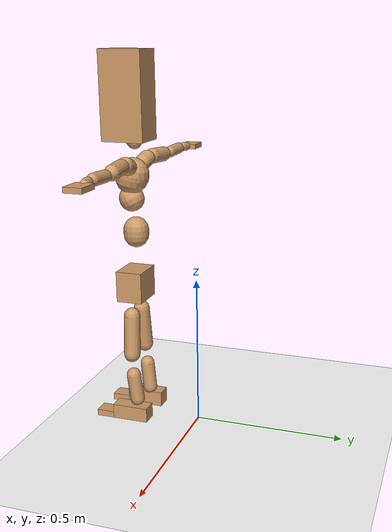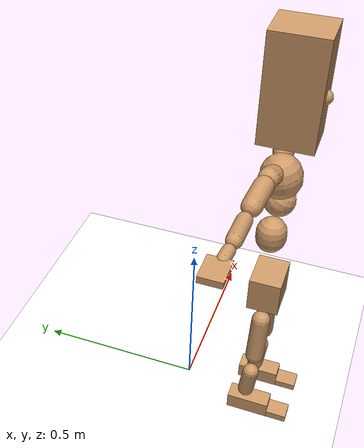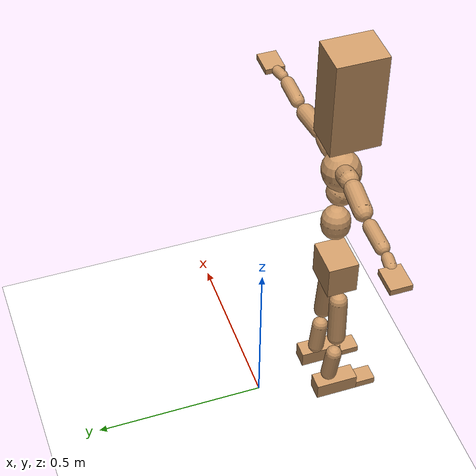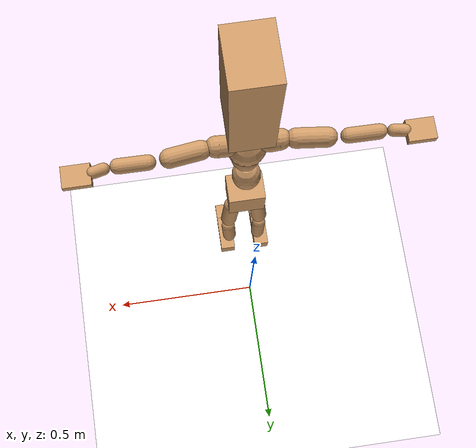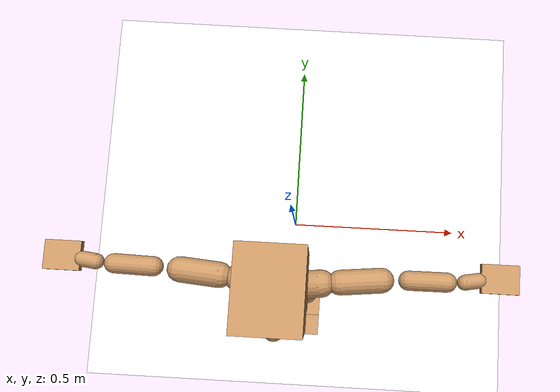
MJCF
<mujoco model="humanoid">
  <option integrator="implicitfast" />

  <visual>
    <global offwidth="1280" offheight="960" />
    <headlight active="1" ambient="0.34 0.34 0.34" diffuse="0.5 0.5 0.5" />
  </visual>

  <default>
    <joint damping="2" stiffness="2" armature="0.01" limited="true" solimplimit="0 .99 .01" />
    <geom condim="1" friction="0.7 0.005 0.0001" solimp=".99 .99 .003" solref="0.015 1" margin="0.001" rgba="0.8 0.6 .4 1" />
    <default class="smplcontact">
      <geom condim="3" friction="1. 0.005 0.0001" solref="0.015 1" solimp="0.98 0.98 0.001" priority="1" />
    </default>
    <default class="stiff_medium">
      <joint stiffness="10" />
    </default>
    <default class="stiff_medium_higher">
      <joint stiffness="50" />
    </default>
    <default class="stiff_high">
      <joint stiffness="100" />
    </default>
  </default>

  <asset>
    <texture type="skybox" builtin="gradient" rgb1="0.99 0.99 0.99" rgb2="0.608 0.828 0.892" width="100" />
    <texture builtin="flat" height="1278" mark="cross" markrgb="1 1 1" name="texgeom" random="0.01" rgb1="0.8 0.6 0.4" rgb2="0.8 0.6 0.4" type="cube" width="127" />
    <texture name="texplane" type="2d" builtin="checker" markrgb="1 1 1" rgb1="0.756 0.772 0.76" rgb2="0.6 0.6 0.6" width="100" height="100" />
    <material name="MatPlane" reflectance="0.5" texture="texplane" texrepeat="1 1" texuniform="true" />
    <material name="geom" texture="texgeom" texuniform="true" />
  </asset>

  <worldbody>
    <light name="tracking_light" pos="0 0 7" dir="0 0 -1" directional="true" cutoff="100" exponent="1" diffuse="1 1 1" specular="0.1 0.1 0.1" mode="trackcom" />
    <camera name="back" pos="0 3 2.4" xyaxes="-1 0 0 0 -1 2" mode="trackcom" />
    <camera name="side" pos="-3 0 2.4" xyaxes="0 -1 0 1 0 2" mode="trackcom" />
    <camera name="front_side" pos="-2.8 -2.8 0.8" xyaxes="0.5 -0.5 0 0.1 0.1 1" mode="trackcom" />
    <geom condim="3" name="floor" pos="0 0 0" rgba="1 1 1 1" size="100 100 .2" type="plane" material="MatPlane" />
    <body name="Pelvis" pos="-0.0018 -0.2233 0.478945" euler="90 0 0">
      <site name="Pelvis" size="0.01" />
      <freejoint name="Pelvis" />
      <geom type="box" pos="0 -0.00874206 -0.0029414" size="0.0571701 0.0521634 0.0443884" quat="1.0000 0.0000 0.0000 0.0000" density="3165.830099" name="Pelvis" />
      <body name="L_Hip" pos="0.0371686 -0.0660351 -0.00363664">
        <joint name="L_Hip_x" type="hinge" pos="0 0 0" axis="1 0 0" stiffness="10" range="-160.0 22.92" class="stiff_medium" damping="15" />
        <joint name="L_Hip_y" type="hinge" pos="0 0 0" axis="0 1 0" stiffness="10" range="-70.0 70.0" class="stiff_medium" damping="10" />
        <joint name="L_Hip_z" type="hinge" pos="0 0 0" axis="0 0 1" stiffness="10" range="-28.65 90.0" class="stiff_medium" damping="10" />
        <geom type="capsule" density="2040.816327" fromto="0.00412339 -0.0449425 -0.000539186 0.0164074 -0.179887 -0.00215708" size="0.0272814" name="L_Hip" />
        <body name="L_Knee" pos="0.0205308 -0.224829 -0.00269627">
          <joint name="L_Knee_x" type="hinge" pos="0 0 0" axis="1 0 0" range="-5.16 171.89" damping="8" />
          <joint name="L_Knee_y" type="hinge" pos="0 0 0" axis="0 1 0" range="-4.58 6.88" damping="8" />
          <joint name="L_Knee_z" type="hinge" pos="0 0 0" axis="0 0 1" range="-6.88 4.58" damping="8" />
          <geom type="capsule" density="1234.567901" fromto="-0.00101042 -0.0298561 -0.0032586 -0.004086 -0.119423 -0.0131229" size="0.0239988" name="L_Knee" />
          <body name="L_Ankle" pos="-0.00509642 -0.149279 -0.0163815">
            <joint name="L_Ankle_x" type="hinge" pos="0 0 0" axis="1 0 0" range="-45.84 45.84" class="stiff_medium" damping="6" />
            <joint name="L_Ankle_y" type="hinge" pos="0 0 0" axis="0 1 0" range="-74.48 22.92" class="stiff_medium" damping="3" />
            <joint name="L_Ankle_z" type="hinge" pos="0 0 0" axis="0 0 1" range="-4.58 4.58" class="stiff_medium" damping="6" />
            <geom type="box" pos="0.0124608 -0.0127817 0.0175733" size="0.0258308 0.0248147 0.0617243" quat="1.0000 0.0000 0.0000 0.0000" density="449.071558" name="L_Ankle" class="smplcontact" />
            <body name="L_Toe" pos="0.0141187 -0.0298418 0.0866318">
              <joint name="L_Toe_x" type="hinge" pos="0 0 0" axis="1 0 0" range="-91.67 22.92" />
              <joint name="L_Toe_y" type="hinge" pos="0 0 0" axis="0 1 0" range="-4.58 4.58" />
              <joint name="L_Toe_z" type="hinge" pos="0 0 0" axis="0 0 1" range="-4.58 4.58" />
              <geom type="box" pos="-0.0016044 0.0029414 0.018009" size="0.0255634 0.010696 0.0360179" quat="1.0000 0.0000 0.0000 0.0000" density="423.206892" name="L_Toe" class="smplcontact" />
            </body>
          </body>
        </body>
      </body>
      <body name="R_Hip" pos="-0.036206 -0.0653848 -0.00229964">
        <joint name="R_Hip_x" type="hinge" pos="0 0 0" axis="1 0 0" stiffness="10" range="-160.0 22.92" class="stiff_medium" damping="15" />
        <joint name="R_Hip_y" type="hinge" pos="0 0 0" axis="0 1 0" stiffness="10" range="-70.0 70.0" class="stiff_medium" damping="10" />
        <joint name="R_Hip_z" type="hinge" pos="0 0 0" axis="0 0 1" stiffness="10" range="-90.0 28.65" class="stiff_medium" damping="10" />
        <geom type="capsule" density="2040.816327" fromto="-0.00460322 -0.0458415 -0.00107332 -0.0183254 -0.183422 -0.00424918" size="0.0268822" name="R_Hip" />
        <body name="R_Knee" pos="-0.0229286 -0.229264 -0.0053225">
          <joint name="R_Knee_x" type="hinge" pos="0 0 0" axis="1 0 0" range="-5.16 171.89" damping="8" />
          <joint name="R_Knee_y" type="hinge" pos="0 0 0" axis="0 1 0" range="-6.88 4.58" damping="8" />
          <joint name="R_Knee_z" type="hinge" pos="0 0 0" axis="0 0 1" range="-4.58 6.88" damping="8" />
          <geom type="capsule" density="1234.567901" fromto="0.00120468 -0.0298924 -0.00319235 0.00473033 -0.119534 -0.0126816" size="0.0239988" name="R_Knee" />
          <body name="R_Ankle" pos="0.00593501 -0.149427 -0.015874">
            <joint name="R_Ankle_x" type="hinge" pos="0 0 0" axis="1 0 0" range="-45.84 45.84" class="stiff_medium" damping="6" />
            <joint name="R_Ankle_y" type="hinge" pos="0 0 0" axis="0 1 0" range="-22.92 74.48" class="stiff_medium" damping="3" />
            <joint name="R_Ankle_z" type="hinge" pos="0 0 0" axis="0 0 1" range="-4.58 4.58" class="stiff_medium" damping="6" />
            <geom type="box" pos="-0.0113378 -0.00930552 0.0185899" size="0.0258308 0.0255634 0.0628135" quat="1.0000 0.0000 0.0000 0.0000" density="434.700981" name="R_Ankle" class="smplcontact" />
            <body name="R_Toe" pos="-0.0135839 -0.0257239 0.0895365">
              <joint name="R_Toe_x" type="hinge" pos="0 0 0" axis="1 0 0" range="-91.67 22.92" />
              <joint name="R_Toe_y" type="hinge" pos="0 0 0" axis="0 1 0" range="-4.58 4.58" />
              <joint name="R_Toe_z" type="hinge" pos="0 0 0" axis="0 0 1" range="-4.58 4.58" />
              <geom type="box" pos="0.00224616 0.0024066 0.016484" size="0.0256169 0.0115517 0.0358001" quat="1.0000 0.0000 0.0000 0.0000" density="407.384095" name="R_Toe" class="smplcontact" />
            </body>
          </body>
        </body>
      </body>
      <body name="Torso" pos="-0.001337 0.0787508 -0.0142792">
        <joint name="Torso_x" type="hinge" pos="0 0 0" axis="1 0 0" range="-25.78 57.3" class="stiff_medium" damping="15" />
        <joint name="Torso_y" type="hinge" pos="0 0 0" axis="0 1 0" range="-57.3 57.3" class="stiff_high" damping="20" />
        <joint name="Torso_z" type="hinge" pos="0 0 0" axis="0 0 1" range="-34.38 34.38" class="stiff_high" damping="20" />
        <geom type="capsule" density="2040.816327" fromto="0.00324656 0.0840236 0.000649311 0.00393748 0.102678 0.000787495" size="0.0417029" name="Torso" />
        <body name="Spine" pos="0.00718714 0.18684 0.00143743">
          <joint name="Spine_x" type="hinge" pos="0 0 0" axis="1 0 0" stiffness="10" range="-25.78 57.3" class="stiff_medium" damping="15" />
          <joint name="Spine_y" type="hinge" pos="0 0 0" axis="0 1 0" stiffness="10" range="-57.3 57.3" class="stiff_high" damping="8" />
          <joint name="Spine_z" type="hinge" pos="0 0 0" axis="0 0 1" stiffness="20" range="-34.38 34.38" class="stiff_high" damping="12" />
          <geom type="capsule" density="2040.816327" fromto="0.000464636 0.0174131 0.00839288 0.000537884 0.0212953 0.0102973" size="0.0409436" name="Spine" />
          <body name="Chest" pos="0.00100252 0.0387083 0.0186902">
            <joint name="Chest_x" type="hinge" pos="0 0 0" axis="1 0 0" stiffness="10" range="-25.78 57.3" class="stiff_medium" damping="15" />
            <joint name="Chest_y" type="hinge" pos="0 0 0" axis="0 1 0" stiffness="10" range="-57.3 57.3" class="stiff_high" damping="8" />
            <joint name="Chest_z" type="hinge" pos="0 0 0" axis="0 0 1" stiffness="20" range="-34.38 34.38" class="stiff_high" damping="12" />
            <geom type="capsule" density="2040.816327" fromto="-0.000573874 0.0499413 -0.0127282 -0.000647123 0.0610018 -0.0155848" size="0.0543385" name="Chest" />
            <body name="Neck" pos="-0.00178409 0.156111 -0.033625">
              <joint name="Neck_x" type="hinge" pos="0 0 0" axis="1 0 0" range="-28.65 57.3" class="stiff_medium_higher" damping="10" />
              <joint name="Neck_y" type="hinge" pos="0 0 0" axis="0 1 0" range="-40.11 40.11" class="stiff_medium_higher" damping="10" />
              <joint name="Neck_z" type="hinge" pos="0 0 0" axis="0 0 1" range="-40.11 40.11" class="stiff_medium_higher" damping="10" />
              <geom type="capsule" density="1000" fromto="0.000732675 0.00944292 0.0074754 0.00298379 0.0377635 0.0298414" size="0.023435" name="Neck" />
              <body name="Head" pos="0.00376957 0.0471982 0.0372565">
                <joint name="Head_x" type="hinge" pos="0 0 0" axis="1 0 0" range="-28.65 57.3" class="stiff_medium_higher" damping="2" />
                <joint name="Head_y" type="hinge" pos="0 0 0" axis="0 1 0" range="-40.11 40.11" class="stiff_medium_higher" damping="2" />
                <joint name="Head_z" type="hinge" pos="0 0 0" axis="0 0 1" range="-40.11 40.11" class="stiff_medium_higher" damping="2" />
                <geom type="box" pos="-0.00390894 0.107748 -0.0107961" size="0.0564004 0.141942 0.0707332" quat="1.0000 0.0000 0.0000 0.0000" density="1018.069894" name="Head" />
                <geom type="capsule" name="nose" size="0.018614 0.009307" pos="0 0.0861 0.046535" quat="1 0 0 0" mass="0" contype="0" conaffinity="0" />
              </body>
            </body>
            <body name="L_Thorax" pos="0.0425798 0.0891719 -0.0244778">
              <joint name="L_Thorax_x" type="hinge" pos="0 0 0" axis="1 0 0" range="-10.89 4.58" class="stiff_medium_higher" damping="20" />
              <joint name="L_Thorax_y" type="hinge" pos="0 0 0" axis="0 1 0" range="-28.65 17.19" class="stiff_medium_higher" damping="20" />
              <joint name="L_Thorax_z" type="hinge" pos="0 0 0" axis="0 0 1" range="-31.51 40.11" class="stiff_medium_higher" damping="20" />
              <geom type="capsule" density="1000" fromto="0.00946398 0.00317199 -0.000936248 0.037856 0.012688 -0.00369225" size="0.0274828" name="L_Thorax" />
              <body name="L_Shoulder" pos="0.04732 0.01586 -0.0046285">
                <joint name="L_Shoulder_x" type="hinge" pos="0 0 0" axis="1 0 0" range="-97.4 97.4" class="stiff_medium" damping="6" />
                <joint name="L_Shoulder_y" type="hinge" pos="0 0 0" axis="0 1 0" range="-108.86 80.21" class="stiff_medium" damping="6" />
                <joint name="L_Shoulder_z" type="hinge" pos="0 0 0" axis="0 0 1" range="-97.4 85.94" class="stiff_medium" damping="6" />
                <geom type="capsule" density="1000" fromto="0.0272477 -0.00136207 -0.00288736 0.109043 -0.00535207 -0.0115499" size="0.0249194" name="L_Shoulder" />
                <body name="L_Elbow" pos="0.13629 -0.00671414 -0.0144372">
                  <joint name="L_Elbow_x" type="hinge" pos="0 0 0" axis="1 0 0" range="-17.19 4.58" damping="5" />
                  <joint name="L_Elbow_y" type="hinge" pos="0 0 0" axis="0 1 0" range="-180.0 17.19" damping="5" />
                  <joint name="L_Elbow_z" type="hinge" pos="0 0 0" axis="0 0 1" range="-100.84 4.58" damping="5" />
                  <geom type="capsule" density="1000" fromto="0.025398 0.000917933 -0.000102925 0.101694 0.00367193 -0.000459925" size="0.019521" name="L_Elbow" />
                  <body name="L_Wrist" pos="0.127092 0.00458987 -0.000611049">
                    <joint name="L_Wrist_x" type="hinge" pos="0 0 0" axis="1 0 0" range="-180.0 22.92" />
                    <joint name="L_Wrist_y" type="hinge" pos="0 0 0" axis="0 1 0" range="-17.19 17.19" />
                    <joint name="L_Wrist_z" type="hinge" pos="0 0 0" axis="0 0 1" range="-22.92 22.92" />
                    <geom type="capsule" density="1000" fromto="0.00949174 -0.000906742 -0.00169495 0.0379677 -0.00367524 -0.00677995" size="0.0153276" name="L_Wrist" class="smplcontact" />
                    <body name="L_Hand" pos="0.0474588 -0.00463012 -0.00842659">
                      <joint name="L_Hand_x" type="hinge" pos="0 0 0" axis="1 0 0" range="-17.19 17.19" />
                      <joint name="L_Hand_y" type="hinge" pos="0 0 0" axis="0 1 0" range="-51.57 51.57" />
                      <joint name="L_Hand_z" type="hinge" pos="0 0 0" axis="0 0 1" range="-91.67 91.67" />
                      <geom type="box" pos="0.031552 0.0005348 -0.00310184" size="0.03744 0.00844984 0.0287722" quat="1.0000 0.0000 0.0000 0.0000" density="400.552564" name="L_Hand" class="smplcontact" />
                    </body>
                  </body>
                </body>
              </body>
            </body>
            <body name="R_Thorax" pos="-0.0445128 0.0874791 -0.0268871">
              <joint name="R_Thorax_x" type="hinge" pos="0 0 0" axis="1 0 0" range="-10.89 4.58" class="stiff_medium_higher" damping="20" />
              <joint name="R_Thorax_y" type="hinge" pos="0 0 0" axis="0 1 0" range="-17.19 28.65" class="stiff_medium_higher" damping="20" />
              <joint name="R_Thorax_z" type="hinge" pos="0 0 0" axis="0 0 1" range="-40.11 31.51" class="stiff_medium_higher" damping="20" />
              <geom type="capsule" density="1000" fromto="-0.00998402 0.00338001 -0.000935752 -0.039936 0.01352 -0.00379575" size="0.0269552" name="R_Thorax" />
              <body name="R_Shoulder" pos="-0.0499198 0.0169527 -0.00473148">
                <joint name="R_Shoulder_x" type="hinge" pos="0 0 0" axis="1 0 0" range="-97.4 97.4" class="stiff_medium" damping="6" />
                <joint name="R_Shoulder_y" type="hinge" pos="0 0 0" axis="0 1 0" range="-80.21 108.86" class="stiff_medium" damping="6" />
                <joint name="R_Shoulder_z" type="hinge" pos="0 0 0" axis="0 0 1" range="-85.94 97.4" class="stiff_medium" damping="6" />
                <geom type="capsule" density="1000" fromto="-0.0266177 -0.00141593 -0.00225584 -0.106575 -0.00561593 -0.00897584" size="0.0255942" name="R_Shoulder" />
                <body name="R_Elbow" pos="-0.133193 -0.00698364 -0.0112317">
                  <joint name="R_Elbow_x" type="hinge" pos="0 0 0" axis="1 0 0" range="-17.19 4.58" damping="5" />
                  <joint name="R_Elbow_y" type="hinge" pos="0 0 0" axis="0 1 0" range="-17.19 180.0" damping="5" />
                  <joint name="R_Elbow_z" type="hinge" pos="0 0 0" axis="0 0 1" range="-4.58 100.84" damping="5" />
                  <geom type="capsule" density="1000" fromto="-0.0260611 0.000814191 -0.000561041 -0.104142 0.00316019 -0.00224404" size="0.0196656" name="R_Elbow" />
                  <body name="R_Wrist" pos="-0.130203 0.00397438 -0.00285328">
                    <joint name="R_Wrist_x" type="hinge" pos="0 0 0" axis="1 0 0" range="-180.0 22.92" />
                    <joint name="R_Wrist_y" type="hinge" pos="0 0 0" axis="0 1 0" range="-17.19 17.19" />
                    <joint name="R_Wrist_z" type="hinge" pos="0 0 0" axis="0 0 1" range="-22.92 22.92" />
                    <geom type="capsule" density="1000" fromto="-0.00954869 -0.000680579 -0.00118342 -0.0382507 -0.00277108 -0.00468642" size="0.0157132" name="R_Wrist" class="smplcontact" />
                    <body name="R_Hand" pos="-0.0477984 -0.00345159 -0.00582152">
                      <joint name="R_Hand_x" type="hinge" pos="0 0 0" axis="1 0 0" range="-17.19 17.19" />
                      <joint name="R_Hand_y" type="hinge" pos="0 0 0" axis="0 1 0" range="-51.57 51.57" />
                      <joint name="R_Hand_z" type="hinge" pos="0 0 0" axis="0 0 1" range="-91.67 91.67" />
                      <geom type="box" pos="-0.029568 -0.00048132 -0.00422492" size="0.036416 0.00877072 0.0292001" quat="1.0000 0.0000 0.0000 0.0000" density="403.679611" name="R_Hand" class="smplcontact" />
                    </body>
                  </body>
                </body>
              </body>
            </body>
          </body>
        </body>
      </body>
    </body>
  </worldbody>
  <actuator>
    <general name="L_Hip_x" joint="L_Hip_x" biastype="affine" gainprm="287.33006409732246" biasprm="-215.3247604770444 -180 -2.0" ctrllimited="true" ctrlrange="-1 1" forcerange="-360 360" />
    <general name="L_Hip_y" joint="L_Hip_y" biastype="affine" gainprm="219.9114857512855" biasprm="0.0 -180 -2.0" ctrllimited="true" ctrlrange="-1 1" forcerange="-360 360" />
    <general name="L_Hip_z" joint="L_Hip_z" biastype="affine" gainprm="186.3749841742145" biasprm="96.3683546488669 -180 -2.0" ctrllimited="true" ctrlrange="-1 1" forcerange="-360 360" />
    <general name="L_Knee_x" joint="L_Knee_x" biastype="affine" gainprm="278.10948965903646" biasprm="261.8988715665131 -180 -2.0" ctrllimited="true" ctrlrange="-1 1" forcerange="-360 360" />
    <general name="L_Knee_y" joint="L_Knee_y" biastype="affine" gainprm="18.001325905069514" biasprm="3.612831551628262 -180 -2.0" ctrllimited="true" ctrlrange="-1 1" forcerange="-360 360" />
    <general name="L_Knee_z" joint="L_Knee_z" biastype="affine" gainprm="18.001325905069514" biasprm="-3.612831551628262 -180 -2.0" ctrllimited="true" ctrlrange="-1 1" forcerange="-360 360" />
    <general name="L_Ankle_x" joint="L_Ankle_x" biastype="affine" gainprm="72.00530362027807" biasprm="0.0 -90 -2.0" ctrllimited="true" ctrlrange="-1 1" forcerange="-180 180" />
    <general name="L_Ankle_y" joint="L_Ankle_y" biastype="affine" gainprm="76.49778111491148" biasprm="-40.49512930477244 -90 -2.0" ctrllimited="true" ctrlrange="-1 1" forcerange="-180 180" />
    <general name="L_Ankle_z" joint="L_Ankle_z" biastype="affine" gainprm="7.1942471767206255" biasprm="0.0 -90 -2.0" ctrllimited="true" ctrlrange="-1 1" forcerange="-180 180" />
    <general name="L_Toe_x" joint="L_Toe_x" biastype="affine" gainprm="71.99902043497087" biasprm="-43.19689898685965 -72 -0.8" ctrllimited="true" ctrlrange="-1 1" forcerange="-144 144" />
    <general name="L_Toe_y" joint="L_Toe_y" biastype="affine" gainprm="5.755397741376501" biasprm="0.0 -72 -0.8" ctrllimited="true" ctrlrange="-1 1" forcerange="-144 144" />
    <general name="L_Toe_z" joint="L_Toe_z" biastype="affine" gainprm="5.755397741376501" biasprm="0.0 -72 -0.8" ctrllimited="true" ctrlrange="-1 1" forcerange="-144 144" />
    <general name="R_Hip_x" joint="R_Hip_x" biastype="affine" gainprm="287.33006409732246" biasprm="-215.3247604770444 -180 -2.0" ctrllimited="true" ctrlrange="-1 1" forcerange="-360 360" />
    <general name="R_Hip_y" joint="R_Hip_y" biastype="affine" gainprm="219.9114857512855" biasprm="0.0 -180 -2.0" ctrllimited="true" ctrlrange="-1 1" forcerange="-360 360" />
    <general name="R_Hip_z" joint="R_Hip_z" biastype="affine" gainprm="186.3749841742145" biasprm="-96.3683546488669 -180 -2.0" ctrllimited="true" ctrlrange="-1 1" forcerange="-360 360" />
    <general name="R_Knee_x" joint="R_Knee_x" biastype="affine" gainprm="278.10948965903646" biasprm="261.8988715665131 -180 -2.0" ctrllimited="true" ctrlrange="-1 1" forcerange="-360 360" />
    <general name="R_Knee_y" joint="R_Knee_y" biastype="affine" gainprm="18.001325905069514" biasprm="-3.612831551628262 -180 -2.0" ctrllimited="true" ctrlrange="-1 1" forcerange="-360 360" />
    <general name="R_Knee_z" joint="R_Knee_z" biastype="affine" gainprm="18.001325905069514" biasprm="3.612831551628262 -180 -2.0" ctrllimited="true" ctrlrange="-1 1" forcerange="-360 360" />
    <general name="R_Ankle_x" joint="R_Ankle_x" biastype="affine" gainprm="72.00530362027807" biasprm="0.0 -90 -2.0" ctrllimited="true" ctrlrange="-1 1" forcerange="-180 180" />
    <general name="R_Ankle_y" joint="R_Ankle_y" biastype="affine" gainprm="76.49778111491148" biasprm="40.49512930477244 -90 -2.0" ctrllimited="true" ctrlrange="-1 1" forcerange="-180 180" />
    <general name="R_Ankle_z" joint="R_Ankle_z" biastype="affine" gainprm="7.1942471767206255" biasprm="0.0 -90 -2.0" ctrllimited="true" ctrlrange="-1 1" forcerange="-180 180" />
    <general name="R_Toe_x" joint="R_Toe_x" biastype="affine" gainprm="71.99902043497087" biasprm="-43.19689898685965 -72 -0.8" ctrllimited="true" ctrlrange="-1 1" forcerange="-144 144" />
    <general name="R_Toe_y" joint="R_Toe_y" biastype="affine" gainprm="5.755397741376501" biasprm="0.0 -72 -0.8" ctrllimited="true" ctrlrange="-1 1" forcerange="-144 144" />
    <general name="R_Toe_z" joint="R_Toe_z" biastype="affine" gainprm="5.755397741376501" biasprm="0.0 -72 -0.8" ctrllimited="true" ctrlrange="-1 1" forcerange="-144 144" />
    <general name="Torso_x" joint="Torso_x" biastype="affine" gainprm="174.00234510682668" biasprm="66.0153336274335 -240 -4.0" ctrllimited="true" ctrlrange="-1 1" forcerange="-360 360" />
    <general name="Torso_y" joint="Torso_y" biastype="affine" gainprm="240.0176787342602" biasprm="0.0 -240 -4.0" ctrllimited="true" ctrlrange="-1 1" forcerange="-360 360" />
    <general name="Torso_z" joint="Torso_z" biastype="affine" gainprm="144.01060724055614" biasprm="0.0 -240 -4.0" ctrllimited="true" ctrlrange="-1 1" forcerange="-360 360" />
    <general name="Spine_x" joint="Spine_x" biastype="affine" gainprm="174.00234510682668" biasprm="66.0153336274335 -240 -4.0" ctrllimited="true" ctrlrange="-1 1" forcerange="-360 360" />
    <general name="Spine_y" joint="Spine_y" biastype="affine" gainprm="240.0176787342602" biasprm="0.0 -240 -4.0" ctrllimited="true" ctrlrange="-1 1" forcerange="-360 360" />
    <general name="Spine_z" joint="Spine_z" biastype="affine" gainprm="144.01060724055614" biasprm="0.0 -240 -4.0" ctrllimited="true" ctrlrange="-1 1" forcerange="-360 360" />
    <general name="Chest_x" joint="Chest_x" biastype="affine" gainprm="174.00234510682668" biasprm="66.0153336274335 -240 -4.0" ctrllimited="true" ctrlrange="-1 1" forcerange="-360 360" />
    <general name="Chest_y" joint="Chest_y" biastype="affine" gainprm="240.0176787342602" biasprm="0.0 -240 -4.0" ctrllimited="true" ctrlrange="-1 1" forcerange="-360 360" />
    <general name="Chest_z" joint="Chest_z" biastype="affine" gainprm="144.01060724055614" biasprm="0.0 -240 -4.0" ctrllimited="true" ctrlrange="-1 1" forcerange="-360 360" />
    <general name="Neck_x" joint="Neck_x" biastype="affine" gainprm="27.00198885760427" biasprm="9.000662952534757 -36 -0.8" ctrllimited="true" ctrlrange="-1 1" forcerange="-72 72" />
    <general name="Neck_y" joint="Neck_y" biastype="affine" gainprm="25.20185626709732" biasprm="0.0 -36 -0.8" ctrllimited="true" ctrlrange="-1 1" forcerange="-72 72" />
    <general name="Neck_z" joint="Neck_z" biastype="affine" gainprm="25.20185626709732" biasprm="0.0 -36 -0.8" ctrllimited="true" ctrlrange="-1 1" forcerange="-72 72" />
    <general name="Head_x" joint="Head_x" biastype="affine" gainprm="18.001325905069514" biasprm="6.000441968356505 -24 -0.8" ctrllimited="true" ctrlrange="-1 1" forcerange="-48 48" />
    <general name="Head_y" joint="Head_y" biastype="affine" gainprm="16.801237511398213" biasprm="0.0 -24 -0.8" ctrllimited="true" ctrlrange="-1 1" forcerange="-48 48" />
    <general name="Head_z" joint="Head_z" biastype="affine" gainprm="16.801237511398213" biasprm="0.0 -24 -0.8" ctrllimited="true" ctrlrange="-1 1" forcerange="-48 48" />
    <general name="L_Thorax_x" joint="L_Thorax_x" biastype="affine" gainprm="16.200146117011364" biasprm="-6.6078165480505335 -120 -1.6" ctrllimited="true" ctrlrange="-1 1" forcerange="-240 240" />
    <general name="L_Thorax_y" joint="L_Thorax_y" biastype="affine" gainprm="48.00353574685204" biasprm="-12.00088393671301 -120 -1.6" ctrllimited="true" ctrlrange="-1 1" forcerange="-240 240" />
    <general name="L_Thorax_z" joint="L_Thorax_z" biastype="affine" gainprm="75.00028861670033" biasprm="9.00589894029074 -120 -1.6" ctrllimited="true" ctrlrange="-1 1" forcerange="-240 240" />
    <general name="L_Shoulder_x" joint="L_Shoulder_x" biastype="affine" gainprm="81.5976331892389" biasprm="0.0 -48 -1.6" ctrllimited="true" ctrlrange="-1 1" forcerange="-96 96" />
    <general name="L_Shoulder_y" joint="L_Shoulder_y" biastype="affine" gainprm="79.19745640189629" biasprm="-12.00088393671301 -48 -1.6" ctrllimited="true" ctrlrange="-1 1" forcerange="-96 96" />
    <general name="L_Shoulder_z" joint="L_Shoulder_z" biastype="affine" gainprm="76.79727961455369" biasprm="-4.800353574685214 -48 -1.6" ctrllimited="true" ctrlrange="-1 1" forcerange="-96 96" />
    <general name="L_Elbow_x" joint="L_Elbow_x" biastype="affine" gainprm="13.67849441372996" biasprm="-7.923096672353461 -72 -0.8" ctrllimited="true" ctrlrange="-1 1" forcerange="-144 144" />
    <general name="L_Elbow_y" joint="L_Elbow_y" biastype="affine" gainprm="123.89813107227425" biasprm="-102.29653998619085 -72 -0.8" ctrllimited="true" ctrlrange="-1 1" forcerange="-144 144" />
    <general name="L_Elbow_z" joint="L_Elbow_z" biastype="affine" gainprm="66.23733950828719" biasprm="-60.4819417669107 -72 -0.8" ctrllimited="true" ctrlrange="-1 1" forcerange="-144 144" />
    <general name="L_Wrist_x" joint="L_Wrist_x" biastype="affine" gainprm="21.24973270888136" biasprm="-16.449379134196157 -12 -0.8" ctrllimited="true" ctrlrange="-1 1" forcerange="-24 24" />
    <general name="L_Wrist_y" joint="L_Wrist_y" biastype="affine" gainprm="3.6002651810139037" biasprm="0.0 -12 -0.8" ctrllimited="true" ctrlrange="-1 1" forcerange="-24 24" />
    <general name="L_Wrist_z" joint="L_Wrist_z" biastype="affine" gainprm="4.800353574685205" biasprm="0.0 -12 -0.8" ctrllimited="true" ctrlrange="-1 1" forcerange="-24 24" />
    <general name="L_Hand_x" joint="L_Hand_x" biastype="affine" gainprm="3.6002651810139037" biasprm="0.0 -12 -0.8" ctrllimited="true" ctrlrange="-1 1" forcerange="-24 24" />
    <general name="L_Hand_y" joint="L_Hand_y" biastype="affine" gainprm="10.800795543041708" biasprm="0.0 -12 -0.8" ctrllimited="true" ctrlrange="-1 1" forcerange="-24 24" />
    <general name="L_Hand_z" joint="L_Hand_z" biastype="affine" gainprm="19.199319903638422" biasprm="0.0 -12 -0.8" ctrllimited="true" ctrlrange="-1 1" forcerange="-24 24" />
    <general name="R_Thorax_x" joint="R_Thorax_x" biastype="affine" gainprm="16.200146117011364" biasprm="-6.6078165480505335 -120 -1.6" ctrllimited="true" ctrlrange="-1 1" forcerange="-240 240" />
    <general name="R_Thorax_y" joint="R_Thorax_y" biastype="affine" gainprm="48.00353574685204" biasprm="12.000883936713002 -120 -1.6" ctrllimited="true" ctrlrange="-1 1" forcerange="-240 240" />
    <general name="R_Thorax_z" joint="R_Thorax_z" biastype="affine" gainprm="75.00028861670033" biasprm="-9.00589894029074 -120 -1.6" ctrllimited="true" ctrlrange="-1 1" forcerange="-240 240" />
    <general name="R_Shoulder_x" joint="R_Shoulder_x" biastype="affine" gainprm="81.5976331892389" biasprm="0.0 -48 -1.6" ctrllimited="true" ctrlrange="-1 1" forcerange="-96 96" />
    <general name="R_Shoulder_y" joint="R_Shoulder_y" biastype="affine" gainprm="79.19745640189629" biasprm="12.00088393671301 -48 -1.6" ctrllimited="true" ctrlrange="-1 1" forcerange="-96 96" />
    <general name="R_Shoulder_z" joint="R_Shoulder_z" biastype="affine" gainprm="76.79727961455369" biasprm="4.800353574685204 -48 -1.6" ctrllimited="true" ctrlrange="-1 1" forcerange="-96 96" />
    <general name="R_Elbow_x" joint="R_Elbow_x" biastype="affine" gainprm="13.67849441372996" biasprm="-7.923096672353461 -72 -0.8" ctrllimited="true" ctrlrange="-1 1" forcerange="-144 144" />
    <general name="R_Elbow_y" joint="R_Elbow_y" biastype="affine" gainprm="123.89813107227425" biasprm="102.29653998619085 -72 -0.8" ctrllimited="true" ctrlrange="-1 1" forcerange="-144 144" />
    <general name="R_Elbow_z" joint="R_Elbow_z" biastype="affine" gainprm="66.23733950828719" biasprm="60.481941766910694 -72 -0.8" ctrllimited="true" ctrlrange="-1 1" forcerange="-144 144" />
    <general name="R_Wrist_x" joint="R_Wrist_x" biastype="affine" gainprm="21.24973270888136" biasprm="-16.449379134196157 -12 -0.8" ctrllimited="true" ctrlrange="-1 1" forcerange="-24 24" />
    <general name="R_Wrist_y" joint="R_Wrist_y" biastype="affine" gainprm="3.6002651810139037" biasprm="0.0 -12 -0.8" ctrllimited="true" ctrlrange="-1 1" forcerange="-24 24" />
    <general name="R_Wrist_z" joint="R_Wrist_z" biastype="affine" gainprm="4.800353574685205" biasprm="0.0 -12 -0.8" ctrllimited="true" ctrlrange="-1 1" forcerange="-24 24" />
    <general name="R_Hand_x" joint="R_Hand_x" biastype="affine" gainprm="3.6002651810139037" biasprm="0.0 -12 -0.8" ctrllimited="true" ctrlrange="-1 1" forcerange="-24 24" />
    <general name="R_Hand_y" joint="R_Hand_y" biastype="affine" gainprm="10.800795543041708" biasprm="0.0 -12 -0.8" ctrllimited="true" ctrlrange="-1 1" forcerange="-24 24" />
    <general name="R_Hand_z" joint="R_Hand_z" biastype="affine" gainprm="19.199319903638422" biasprm="0.0 -12 -0.8" ctrllimited="true" ctrlrange="-1 1" forcerange="-24 24" />
  </actuator>
  <contact>
    <exclude body1="Torso" body2="Chest" />
    <exclude body1="Head" body2="Chest" />
    <exclude body1="R_Knee" body2="R_Toe" />
    <exclude body1="R_Knee" body2="L_Ankle" />
    <exclude body1="R_Knee" body2="L_Toe" />
    <exclude body1="L_Knee" body2="L_Toe" />
    <exclude body1="L_Knee" body2="R_Ankle" />
    <exclude body1="L_Knee" body2="R_Toe" />
    <exclude body1="L_Shoulder" body2="Chest" />
    <exclude body1="R_Shoulder" body2="Chest" />
  </contact>
  <sensor>
    <framelinvel name="sensor_Pelvis_framelinvel" objtype="xbody" objname="Pelvis" />
    <framelinvel name="sensor_L_Hip_framelinvel" objtype="xbody" objname="L_Hip" />
    <framelinvel name="sensor_L_Knee_framelinvel" objtype="xbody" objname="L_Knee" />
    <framelinvel name="sensor_L_Ankle_framelinvel" objtype="xbody" objname="L_Ankle" />
    <framelinvel name="sensor_L_Toe_framelinvel" objtype="xbody" objname="L_Toe" />
    <framelinvel name="sensor_R_Hip_framelinvel" objtype="xbody" objname="R_Hip" />
    <framelinvel name="sensor_R_Knee_framelinvel" objtype="xbody" objname="R_Knee" />
    <framelinvel name="sensor_R_Ankle_framelinvel" objtype="xbody" objname="R_Ankle" />
    <framelinvel name="sensor_R_Toe_framelinvel" objtype="xbody" objname="R_Toe" />
    <framelinvel name="sensor_Torso_framelinvel" objtype="xbody" objname="Torso" />
    <framelinvel name="sensor_Spine_framelinvel" objtype="xbody" objname="Spine" />
    <framelinvel name="sensor_Chest_framelinvel" objtype="xbody" objname="Chest" />
    <framelinvel name="sensor_Neck_framelinvel" objtype="xbody" objname="Neck" />
    <framelinvel name="sensor_Head_framelinvel" objtype="xbody" objname="Head" />
    <framelinvel name="sensor_L_Thorax_framelinvel" objtype="xbody" objname="L_Thorax" />
    <framelinvel name="sensor_L_Shoulder_framelinvel" objtype="xbody" objname="L_Shoulder" />
    <framelinvel name="sensor_L_Elbow_framelinvel" objtype="xbody" objname="L_Elbow" />
    <framelinvel name="sensor_L_Wrist_framelinvel" objtype="xbody" objname="L_Wrist" />
    <framelinvel name="sensor_L_Hand_framelinvel" objtype="xbody" objname="L_Hand" />
    <framelinvel name="sensor_R_Thorax_framelinvel" objtype="xbody" objname="R_Thorax" />
    <framelinvel name="sensor_R_Shoulder_framelinvel" objtype="xbody" objname="R_Shoulder" />
    <framelinvel name="sensor_R_Elbow_framelinvel" objtype="xbody" objname="R_Elbow" />
    <framelinvel name="sensor_R_Wrist_framelinvel" objtype="xbody" objname="R_Wrist" />
    <framelinvel name="sensor_R_Hand_framelinvel" objtype="xbody" objname="R_Hand" />
    <frameangvel name="sensor_Pelvis_frameangvel" objtype="xbody" objname="Pelvis" />
    <frameangvel name="sensor_L_Hip_frameangvel" objtype="xbody" objname="L_Hip" />
    <frameangvel name="sensor_L_Knee_frameangvel" objtype="xbody" objname="L_Knee" />
    <frameangvel name="sensor_L_Ankle_frameangvel" objtype="xbody" objname="L_Ankle" />
    <frameangvel name="sensor_L_Toe_frameangvel" objtype="xbody" objname="L_Toe" />
    <frameangvel name="sensor_R_Hip_frameangvel" objtype="xbody" objname="R_Hip" />
    <frameangvel name="sensor_R_Knee_frameangvel" objtype="xbody" objname="R_Knee" />
    <frameangvel name="sensor_R_Ankle_frameangvel" objtype="xbody" objname="R_Ankle" />
    <frameangvel name="sensor_R_Toe_frameangvel" objtype="xbody" objname="R_Toe" />
    <frameangvel name="sensor_Torso_frameangvel" objtype="xbody" objname="Torso" />
    <frameangvel name="sensor_Spine_frameangvel" objtype="xbody" objname="Spine" />
    <frameangvel name="sensor_Chest_frameangvel" objtype="xbody" objname="Chest" />
    <frameangvel name="sensor_Neck_frameangvel" objtype="xbody" objname="Neck" />
    <frameangvel name="sensor_Head_frameangvel" objtype="xbody" objname="Head" />
    <frameangvel name="sensor_L_Thorax_frameangvel" objtype="xbody" objname="L_Thorax" />
    <frameangvel name="sensor_L_Shoulder_frameangvel" objtype="xbody" objname="L_Shoulder" />
    <frameangvel name="sensor_L_Elbow_frameangvel" objtype="xbody" objname="L_Elbow" />
    <frameangvel name="sensor_L_Wrist_frameangvel" objtype="xbody" objname="L_Wrist" />
    <frameangvel name="sensor_L_Hand_frameangvel" objtype="xbody" objname="L_Hand" />
    <frameangvel name="sensor_R_Thorax_frameangvel" objtype="xbody" objname="R_Thorax" />
    <frameangvel name="sensor_R_Shoulder_frameangvel" objtype="xbody" objname="R_Shoulder" />
    <frameangvel name="sensor_R_Elbow_frameangvel" objtype="xbody" objname="R_Elbow" />
    <frameangvel name="sensor_R_Wrist_frameangvel" objtype="xbody" objname="R_Wrist" />
    <frameangvel name="sensor_R_Hand_frameangvel" objtype="xbody" objname="R_Hand" />
    <subtreelinvel name="Chest_subtreelinvel" body="Chest" />
    <gyro name="Pelvis_gyro" site="Pelvis" />
  </sensor>
</mujoco>
